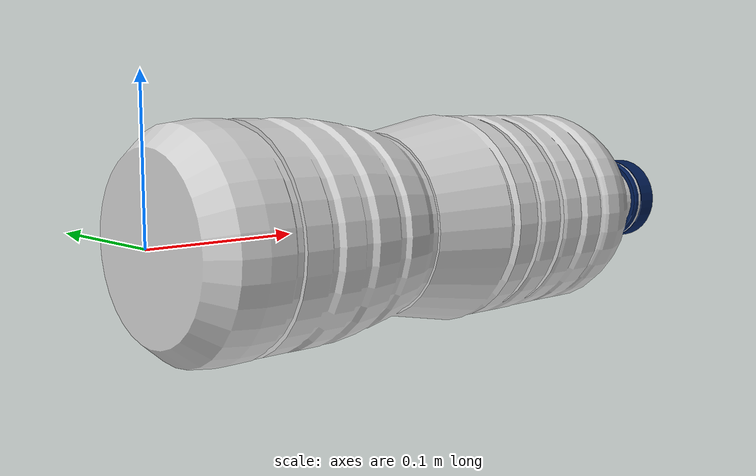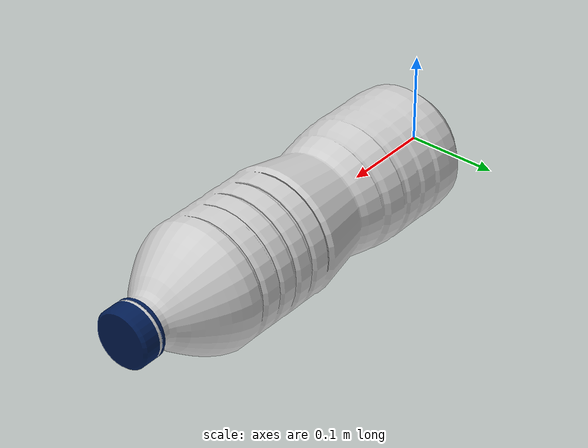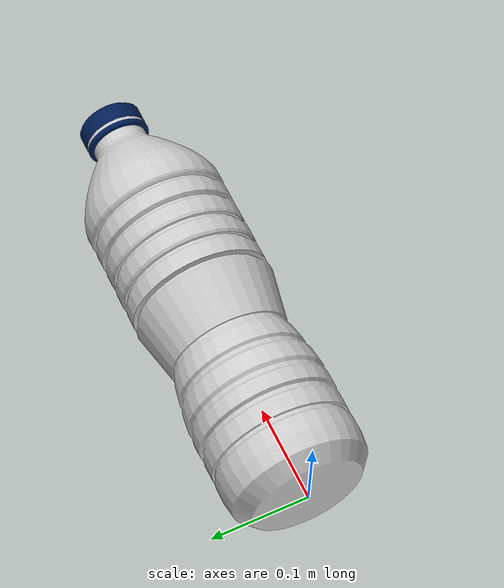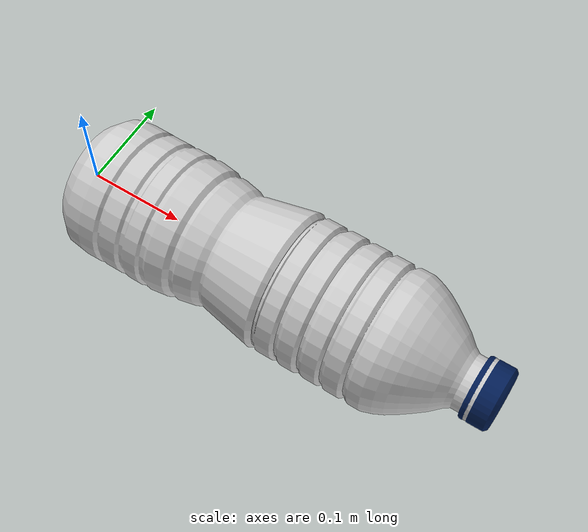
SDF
<?xml version="1.0" ?>
<sdf version="1.7">
  <model name="plastic_bottle">
    <!-- Static model, can be affected by physics -->
    <static>false</static>
    <allow_auto_disable>false</allow_auto_disable>

    <!-- Main bottle body -->
    <link name="bottle_body">
      <pose>0 0 0.0 -0.0 1.57 0</pose> <!-- Center at half height -->
      <gravity>true</gravity> <!-- Gravity enabled - buoyancy plugin counteracts it when submerged -->

      <!-- Collision geometry - simplified cylinder -->
      <collision name="bottle_collision">
        <geometry>
          <cylinder>
            <radius>0.032</radius> <!-- ~64mm diameter bottle -->
            <length>0.25</length>  <!-- 250mm height -->
          </cylinder>
        </geometry>
        <surface>
          <contact>
            <ode>
              <min_depth>0.001</min_depth>
            </ode>
          </contact>
          <friction>
            <ode>
              <mu>0.8</mu>  <!-- Higher friction for plastic -->
              <mu2>0.8</mu2>
            </ode>
          </friction>
        </surface>
      </collision>

      <!-- Visual appearance - use mesh if available -->
      <visual name="bottle_visual">
        <geometry>
          <mesh>
            <uri>model://plastic_bottle/plastic_bottle.dae</uri>
            <scale>2 2 2</scale> <!-- Convert mm to m for realistic size -->
          </mesh>
        </geometry>

      </visual>

      <!-- Inertial properties for a typical empty PET bottle -->
      <inertial>
        <mass>0.5</mass> <!-- 40g empty PET bottle -->
      </inertial>

      <!-- Add velocity decay for more realistic floating behavior -->
      <velocity_decay>
        <linear>0.00001</linear>
        <angular>0.00001</angular>
      </velocity_decay>
    </link>

    <!-- VRX Buoyancy Plugin -->
    <plugin name="vrx::PolyhedraBuoyancyDrag"
            filename="libPolyhedraBuoyancyDrag.so">
      <!-- Fluid properties -->
      <fluid_density>1025.0</fluid_density>  <!-- Seawater density kg/m³ -->
      <fluid_level>0.0</fluid_level>          <!-- Water surface level -->

      <!-- Drag coefficients -->
      <linear_drag>2.0</linear_drag>         <!-- Linear drag coefficient -->
      <angular_drag>1.0</angular_drag>        <!-- Angular drag coefficient -->

      <!-- Buoyancy object definition -->
      <buoyancy name="bottle_buoyancy">
        <link_name>bottle_body</link_name>
      <pose>0 0 0.0 0 0 0</pose> <!-- Center at half height -->
        <geometry>
          <cylinder>
            <radius>0.032</radius>             <!-- Same as collision geometry -->
            <length>0.40</length>              <!-- Same as collision geometry -->
          </cylinder>
        </geometry>
      </buoyancy>

      <!-- Wave field integration -->
      <wavefield>
        <topic>/vrx/wavefield/parameters</topic>
      </wavefield>
    </plugin>

  </model>
</sdf>
